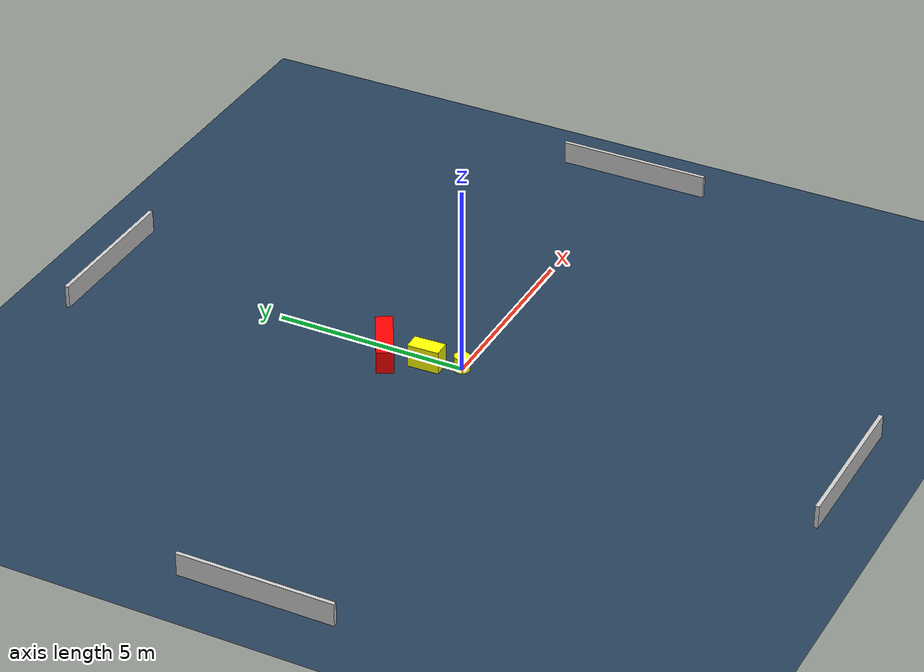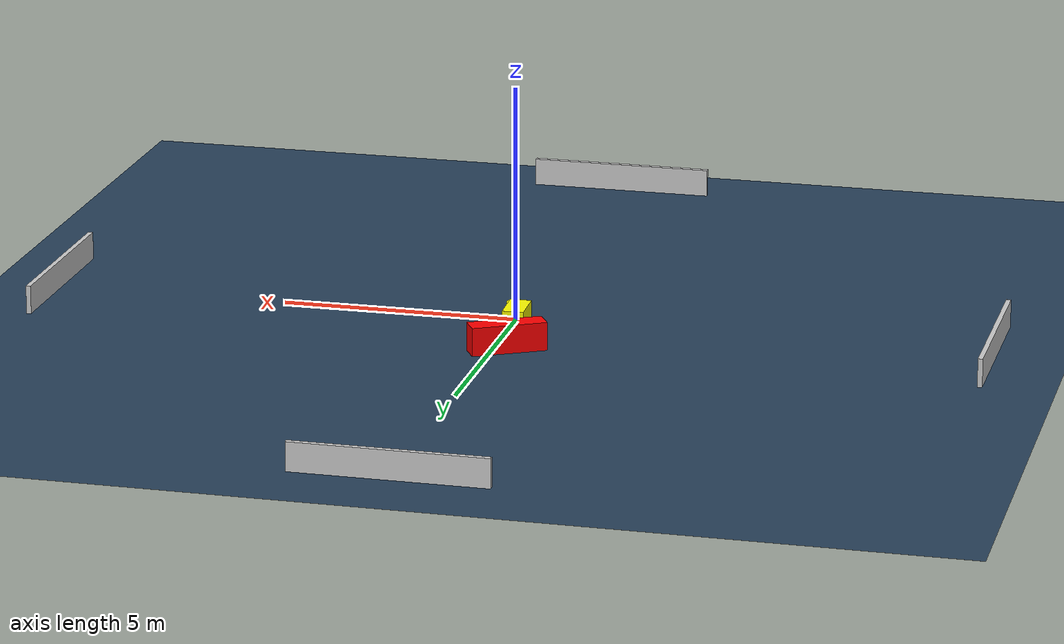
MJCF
<?xml version="1.0" ?>
<mujoco model="generated_environment">
  <option timestep="0.01" integrator="RK4" cone="elliptic"/>
  <default>
    <geom density="1"/>
  </default>
  <asset>
    <texture builtin="gradient" height="3072" name="skybox" rgb1="0.3 0.5 0.7" rgb2="0 0 0" type="skybox" width="512"/>
    <texture builtin="checker" height="300" name="groundplane" rgb1="0.2 0.3 0.4" rgb2="0.1 0.2 0.3" type="2d" width="300"/>
    <material name="groundplane" reflectance="0.2" texrepeat="5 5" texture="groundplane"/>
  </asset>
  <worldbody>
    <light dir="0 0 -1" directional="true" pos="0 0 1.5"/>
    <geom condim="3" friction="0.5 0.005 0.001" material="groundplane" name="floor" pos="0 0 0" size="0 0 0.05" type="plane"/>
    <body name="walls">
      <geom name="wall_1" condim="4" pos="-10.0 0.0 0.3" rgba="0.800000011920929 0.800000011920929 0.800000011920929 1.0" size="0.05 2.0 0.3" type="box"/>
      <geom name="wall_2" condim="4" pos="10.0 0.0 0.3" rgba="0.800000011920929 0.800000011920929 0.800000011920929 1.0" size="0.05 2.0 0.3" type="box"/>
      <geom name="wall_3" condim="4" pos="0.0 -10.0 0.3" rgba="0.800000011920929 0.800000011920929 0.800000011920929 1.0" size="2.0 0.05 0.3" type="box"/>
      <geom name="wall_4" condim="4" pos="0.0 10.0 0.3" rgba="0.800000011920929 0.800000011920929 0.800000011920929 1.0" size="2.0 0.05 0.3" type="box"/>
    </body>
    <body name="robot">
      <joint name="joint_x" type="slide" pos="0 0 0" axis="1 0 0"/>
      <joint name="joint_y" type="slide" pos="0 0 0" axis="0 1 0"/>
      <geom name="robot" type="cylinder" pos="0.0 0.0 0.2" size="0.2 0.2 0.0" mass="5.0" friction="1.0 0.005 0.0001" condim="4" rgba="1.0 1.0 0.0 1.0"/>
    </body>
    <body name="obstacle_1_movable">
      <geom name="obstacle_1_movable" condim="4" pos="-0.22537834702076254 0.8501189237696232 0.3" euler="0 0 272.0645277161058" friction="0.0 0.005 0.001" rgba="1.0 1.0 0.0 1.0" size="0.4138798867504158 0.22292276357370389 0.3" type="box" mass="0.1"/>
      <joint type="free"/>
    </body>
    <body name="obstacle_2_static">
      <geom name="obstacle_2_static" condim="4" pos="-0.2943183388677674 1.9711583579178156 0.3" euler="0 0 28.981777340084154" friction="0.0 0.005 0.001" rgba="1.0 0.0 0.0 1.0" size="0.7903256151965332 0.22053524790423265 0.3" type="box"/>
    </body>
  </worldbody>
  <actuator>
    <motor name="actuator_x" joint="joint_x" gear="1" ctrlrange="-1 1"/>
    <motor name="actuator_y" joint="joint_y" gear="1" ctrlrange="-1 1"/>
  </actuator>
</mujoco>
